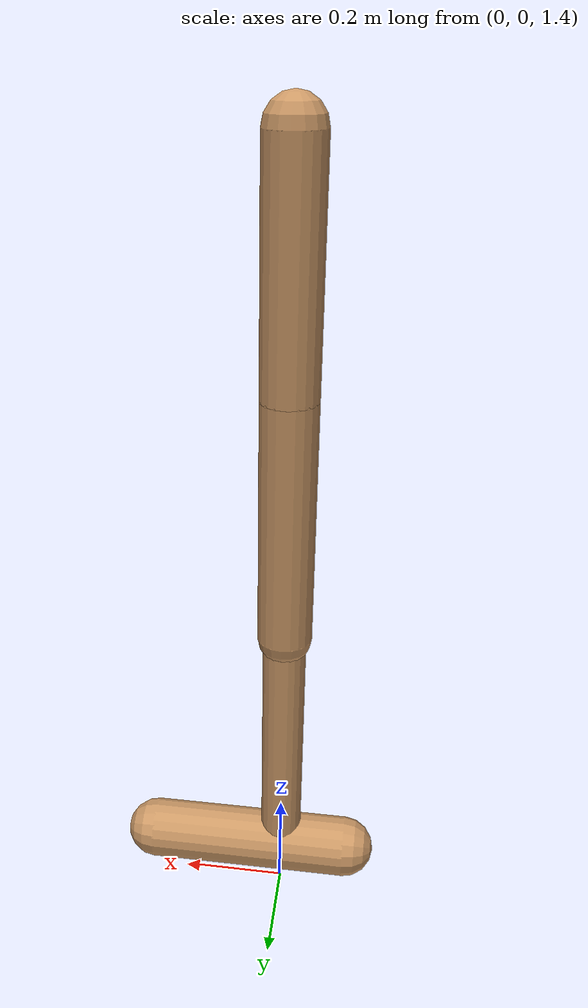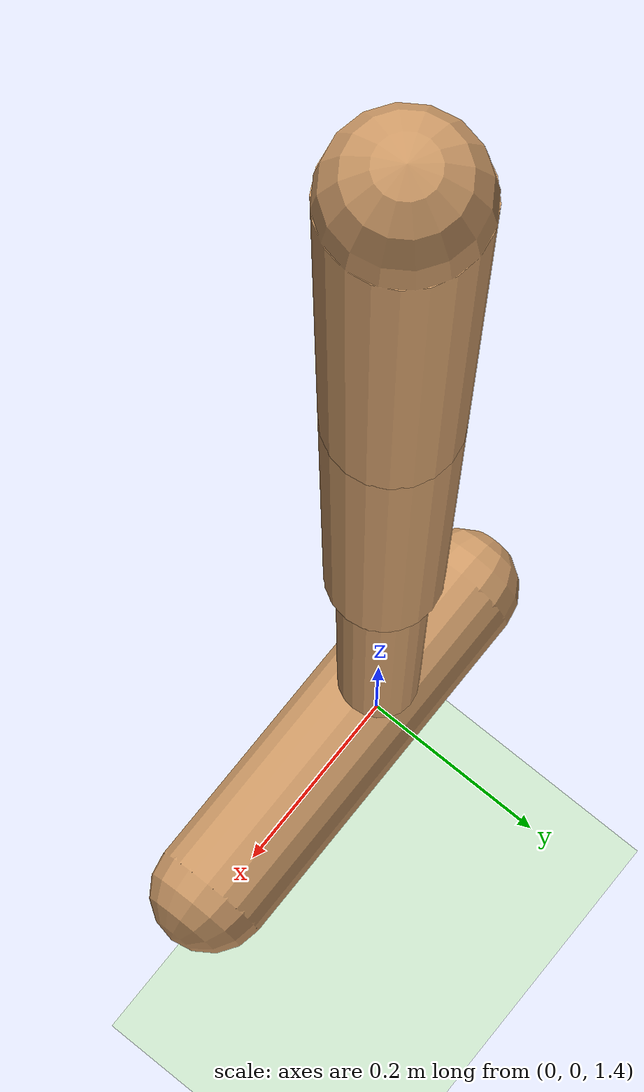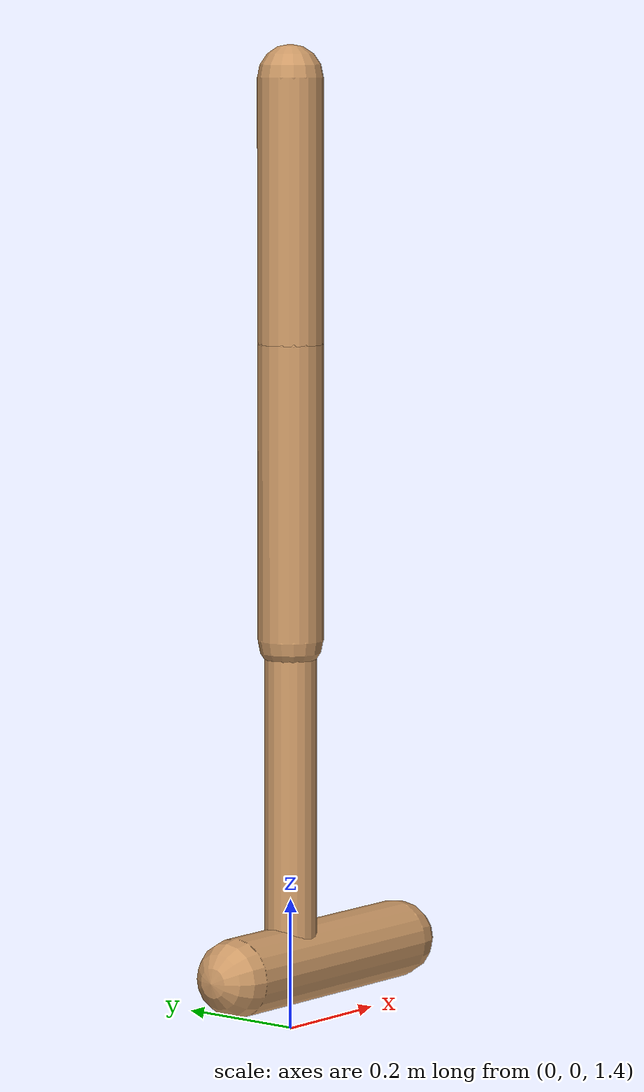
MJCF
<mujoco model="triple_pendulum_no_contact">
  <compiler angle="degree" coordinate="local" inertiafromgeom="true"/>

  <option integrator="implicitfast" timestep="0.01"/>

  <default>
    <joint armature="0.01" damping="1" limited="false"/>
    <geom conaffinity="0" contype="0" margin="0.001" material="geom" rgba="0.8 0.6 .4 1" solimp=".8 .8 .01" solref=".02 1"/>
    <motor ctrllimited="true" ctrlrange="-1.0 1.0" gear="25"/>
  </default>

  <asset>
    <texture type="skybox" builtin="gradient" rgb1=".4 .5 .6" rgb2="0 0 0" width="100" height="100"/>
    <texture builtin="checker" height="100" name="texplane" rgb1="0 0 0" rgb2="0.8 0.8 0.8" type="2d" width="100"/>
    <material name="MatPlane" reflectance="0.5" shininess="1" specular="1" texrepeat="60 60" texture="texplane"/>
    <texture builtin="flat" height="1278" mark="cross" markrgb="1 1 1" name="texgeom" random="0.01" rgb1="0.8 0.6 0.4" rgb2="0.8 0.6 0.4" type="cube" width="127"/>
    <material name="geom" texture="texgeom" texuniform="true"/>
  </asset>

  <worldbody>
    <light cutoff="100" diffuse="1 1 1" dir="0 0 -1" directional="true" pos="0 0 1.3" specular=".1 .1 .1"/>
    <geom conaffinity="1" condim="3" name="floor" pos="0 0 0" rgba="0.8 0.9 0.8 1" size="20 20 .125" type="plane" material="MatPlane"/>

    <body name="foot" pos="0 0 1.5">
      <geom friction="2.0" fromto="-0.13 0 0 0.26 0 0" name="foot_geom" size="0.06" type="capsule"/>

      <body name="leg" pos="0 0 0">
        <joint axis="0 -1 0" name="foot_joint" pos="0 0 0" type="hinge"/>
        <geom friction="0.9" fromto="0 0 0 0 0 0.5" name="leg_geom" size="0.04" type="capsule"/>

        <body name="thigh" pos="0 0 0.5">
          <joint axis="0 -1 0" name="leg_joint" pos="0 0 0" type="hinge"/>
          <geom friction="0.9" fromto="0 0 0 0 0 0.45" name="thigh_geom" size="0.05" type="capsule"/>

          <body name="torso" pos="0 0 0.45">
            <camera name="track" mode="trackcom" pos="0 -3 1" xyaxes="1 0 0 0 0 1"/>
            <joint axis="0 -1 0" name="thigh_joint" pos="0 0 0" type="hinge"/>
            <geom friction="0.9" fromto="0 0 0 0 0 0.4" name="torso_geom" size="0.05" type="capsule"/>
          </body>
        </body>
      </body>
    </body>
  </worldbody>

  <actuator>
    <motor joint="thigh_joint" name="thigh_motor" ctrlrange="-1 1"/>
    <motor joint="leg_joint" name="leg_motor" ctrlrange="-1 1"/>
    <motor joint="foot_joint" name="foot_motor" ctrlrange="-1 1"/>
  </actuator>
</mujoco>
